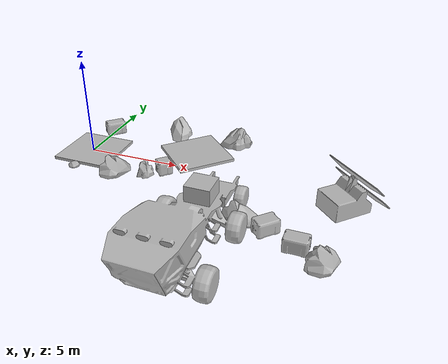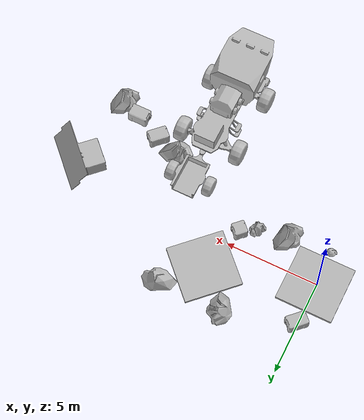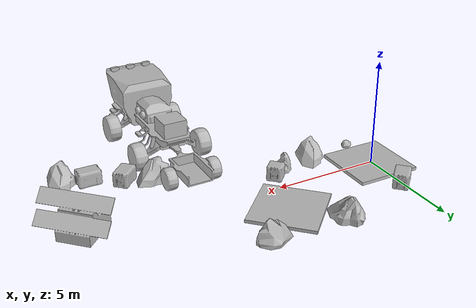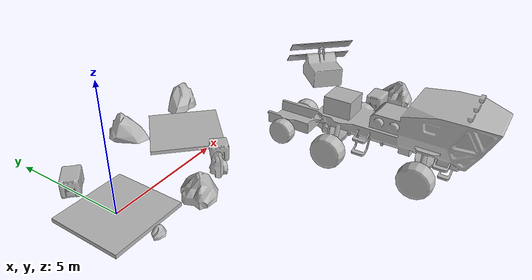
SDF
<sdf version="1.6">
 <world name="SRC_finals">
  <include>
   <name>walkway_1</name>
   <pose>0.09
      0
      -0.052151
      0
      0
      3.141592653589793</pose>
   <uri>model://walkway_finish_opposite</uri>
  </include>
  <include>
   <name>bling_1</name>
   <pose>0.08999999999999976
      -1.924
      0
      0
      0
      3.141592653589793</pose>
   <uri>model://mars_rock_1</uri>
  </include>
  <include>
   <name>bling_2</name>
   <pose>0.09000000000000037
      2.324
      0
      0
      0
      0.785398163397448</pose>
   <uri>model://mars_crate_long</uri>
  </include>
  <include>
   <name>bling_3</name>
   <pose>2.376
      -1.8620000000000005
      0
      0
      0
      3.141592653589793</pose>
   <uri>model://mars_rock_3</uri>
  </include>
  <include>
   <name>bling_4</name>
   <pose>4.7215767124746195
      -0.8210033550029181
      0
      0
      0
      -2.356194490192345</pose>
   <uri>model://mars_crate</uri>
  </include>
  <include>
   <name>bling_5</name>
   <pose>3.9106949400811337
      -1.3506735555415057
      0
      0
      0
      3.141592653589793</pose>
   <uri>model://mars_rock_2</uri>
  </include>
  <include>
   <name>walkway_4</name>
   <pose>5.516364734528299
      1.6171008265282976
      -0.052151
      0
      0
      -2.3561944901923453</pose>
   <uri>model://walkway_finish_adjacent</uri>
  </include>
  <include>
   <name>bling_6</name>
   <pose>7.3718129283618
      3.472549020361798
      0
      0
      0
      -0.7853981633974485</pose>
   <uri>model://mars_rock_3</uri>
  </include>
  <include>
   <name>bling_7</name>
   <pose>3.660916540694798
      3.472549020361799
      0
      0
      0
      0.785398163397448</pose>
   <uri>model://mars_rock_3</uri>
  </include>
  <include>
   <pose>8.210846995805328
        -6.338455514147672
        0
        0
        0
        -4.0574162479713433e-16</pose>
   <uri>model://mars_explorer</uri>
  </include>
  <include>
   <name>bling_8</name>
   <pose>10.812801788025764
      -3.7162204777670444
      0
      0
      0
      -2.3561944901923453</pose>
   <uri>model://mars_crate_long</uri>
  </include>
  <include>
   <name>bling_9</name>
   <pose>9.440624328720562
      -3.5416379370722466
      0
      0
      0
      2.356194490192345</pose>
   <uri>model://mars_rock_3</uri>
  </include>
  <include>
   <pose>13.320070517678367
        -1.1557117481144445
        0.2
        0
        0
        -0.7853981633974487</pose>
   <uri>model://solar_array</uri>
  </include>
  <include>
   <name>bling_10</name>
   <pose>12.25471115529696
      -4.407270866335655
      0
      0
      0
      3.141592653589793</pose>
   <uri>model://mars_crate_long</uri>
  </include>
  <include>
   <name>bling_11</name>
   <pose>13.414756580246198
      -5.093985441386417
      0
      0
      0
      3.141592653589793</pose>
   <uri>model://mars_rock_3</uri>
  </include>
 </world>
</sdf>
